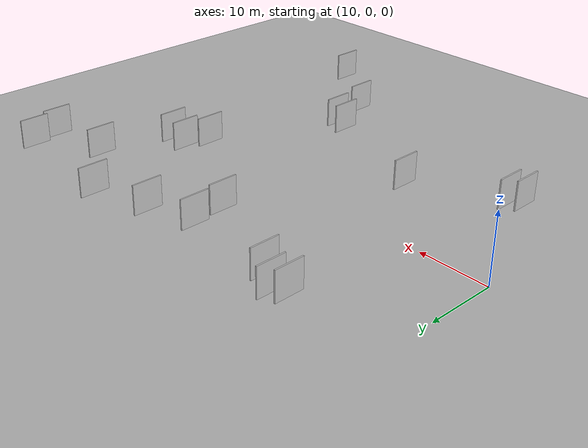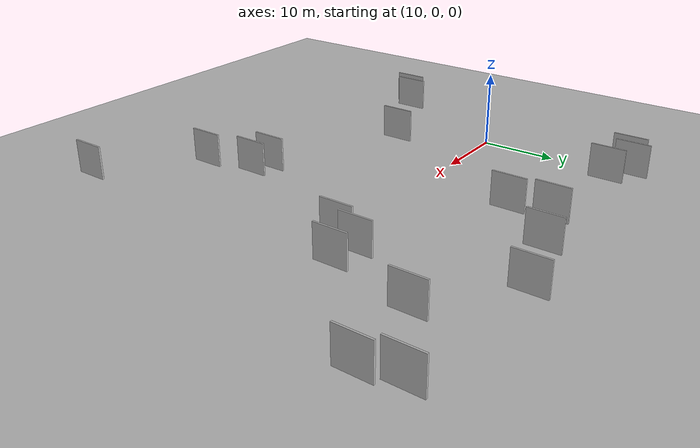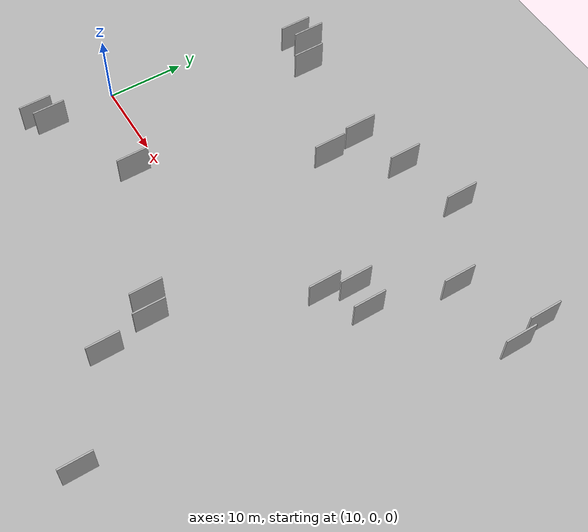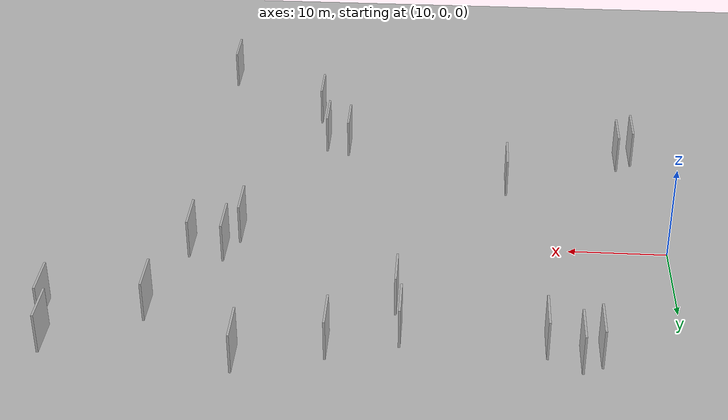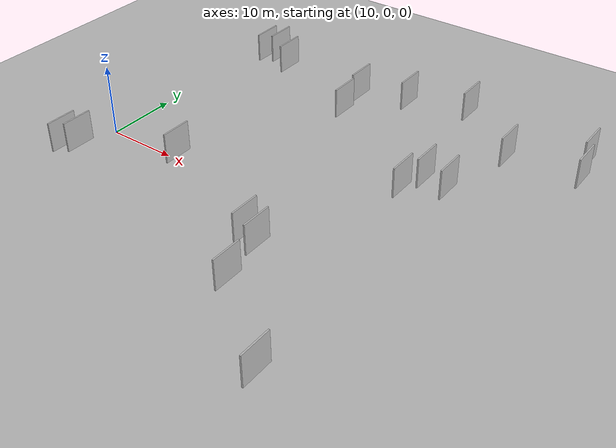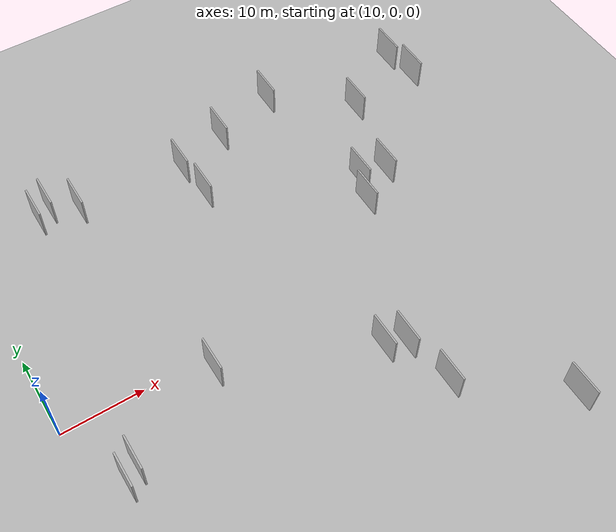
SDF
<?xml version="1.0" encoding="utf-8"?>

<sdf version="1.6">

   <world name="default">

      <gui fullscreen="0">

         <camera name="user_camera">

            <pose>-15 0 4.57585 0 0 0</pose>

            <view_controller>orbit</view_controller>

         </camera>

      </gui>

      <scene>

         <sky>

           <clouds>

             <speed>12</speed>

           </clouds>

         </sky>

         <ambient>0.4 0.4 0.4 1</ambient>

         <background>0.7 0.7 0.7 1</background>

         <shadows>1</shadows>

      </scene>

      <gravity>0 0 -9.8066</gravity>

      <magnetic_field>6e-06 2.3e-05 -4.2e-05</magnetic_field>

      <physics default="0" name="default_physics" type="ode">

         <ode>

            <solver>

               <type>quick</type>

               <iters>10</iters>

               <sor>1.0</sor>

               <use_dynamic_moi_rescaling>0</use_dynamic_moi_rescaling>

            </solver>

            <constraints>

               <cfm>0</cfm>

               <erp>0.2</erp>

               <contact_max_correcting_vel>100</contact_max_correcting_vel>

               <contact_surface_layer>0.001</contact_surface_layer>

            </constraints>

         </ode>

         <max_step_size>0.004</max_step_size>

         <real_time_factor>1</real_time_factor>

         <real_time_update_rate>250</real_time_update_rate>

      </physics>

      <light name="sun" type="directional">

         <cast_shadows>1</cast_shadows>

         <pose>0 0 10 0 0 0</pose>

         <diffuse>0.8 0.8 0.8 1</diffuse>

         <specular>0.2 0.2 0.2 1</specular>

         <attenuation>

            <range>1000</range>

            <constant>0.9</constant>

            <linear>0.01</linear>

            <quadratic>0.001</quadratic>

         </attenuation>

         <direction>-0.5 0.1 -0.9</direction>

      </light>

      <include>

         <name>ground_plane_1</name>

         <uri>model://HANNAS_ground_plane</uri>

         <pose>0 0 0  0 0 0</pose>

      </include>

      <include>

         <name>ground_plane_2</name>

         <uri>model://HANNAS_ground_plane</uri>

         <pose>100 0 0  0 0 0</pose>

      </include>

      <model name="HANNAS_wall_1">

         <static>1</static>

         <pose frame="">26.5306 -4.4248 5.0 0.000000 0.000000 1.570796</pose>

         <link name="link">

            <pose frame="">0 0 2.00 0 0 0</pose>

            <collision name="collision">

               <geometry>

                  <box>

                     <size>4.00 0.2 4.00</size>

                  </box>

               </geometry>

               <max_contacts>10</max_contacts>

               <surface>

                  <contact>

                     <ode/>

                  </contact>

                  <bounce/>

                  <friction>

                     <torsional>

                        <ode/>

                     </torsional>

                     <ode/>

                  </friction>

               </surface>

            </collision>

            <visual name="visual">

               <cast_shadows>0</cast_shadows>

               <geometry>

                  <box>

                     <size>4.00 0.2 4.00</size>

                  </box>

               </geometry>

               <material>

                  <script>

                     <uri>model://HANNAS_wall/materials/scripts</uri>

                     <uri>model://HANNAS_wall/materials/textures</uri>

                     <name>vrc/HANNAS_wall</name>

                  </script>

               </material>

            </visual>

            <self_collide>0</self_collide>

            <enable_wind>0</enable_wind>

            <kinematic>0</kinematic>

         </link>

      </model>

      <model name="HANNAS_wall_2">

         <static>1</static>

         <pose frame="">57.0450 -26.2859 5.0 0.000000 0.000000 1.570796</pose>

         <link name="link">

            <pose frame="">0 0 2.00 0 0 0</pose>

            <collision name="collision">

               <geometry>

                  <box>

                     <size>4.00 0.2 4.00</size>

                  </box>

               </geometry>

               <max_contacts>10</max_contacts>

               <surface>

                  <contact>

                     <ode/>

                  </contact>

                  <bounce/>

                  <friction>

                     <torsional>

                        <ode/>

                     </torsional>

                     <ode/>

                  </friction>

               </surface>

            </collision>

            <visual name="visual">

               <cast_shadows>0</cast_shadows>

               <geometry>

                  <box>

                     <size>4.00 0.2 4.00</size>

                  </box>

               </geometry>

               <material>

                  <script>

                     <uri>model://HANNAS_wall/materials/scripts</uri>

                     <uri>model://HANNAS_wall/materials/textures</uri>

                     <name>vrc/HANNAS_wall</name>

                  </script>

               </material>

            </visual>

            <self_collide>0</self_collide>

            <enable_wind>0</enable_wind>

            <kinematic>0</kinematic>

         </link>

      </model>

      <model name="HANNAS_wall_3">

         <static>1</static>

         <pose frame="">18.6197 22.8474 5.0 0.000000 0.000000 1.570796</pose>

         <link name="link">

            <pose frame="">0 0 2.00 0 0 0</pose>

            <collision name="collision">

               <geometry>

                  <box>

                     <size>4.00 0.2 4.00</size>

                  </box>

               </geometry>

               <max_contacts>10</max_contacts>

               <surface>

                  <contact>

                     <ode/>

                  </contact>

                  <bounce/>

                  <friction>

                     <torsional>

                        <ode/>

                     </torsional>

                     <ode/>

                  </friction>

               </surface>

            </collision>

            <visual name="visual">

               <cast_shadows>0</cast_shadows>

               <geometry>

                  <box>

                     <size>4.00 0.2 4.00</size>

                  </box>

               </geometry>

               <material>

                  <script>

                     <uri>model://HANNAS_wall/materials/scripts</uri>

                     <uri>model://HANNAS_wall/materials/textures</uri>

                     <name>vrc/HANNAS_wall</name>

                  </script>

               </material>

            </visual>

            <self_collide>0</self_collide>

            <enable_wind>0</enable_wind>

            <kinematic>0</kinematic>

         </link>

      </model>

      <model name="HANNAS_wall_4">

         <static>1</static>

         <pose frame="">59.3501 18.5660 5.0 0.000000 0.000000 1.570796</pose>

         <link name="link">

            <pose frame="">0 0 2.00 0 0 0</pose>

            <collision name="collision">

               <geometry>

                  <box>

                     <size>4.00 0.2 4.00</size>

                  </box>

               </geometry>

               <max_contacts>10</max_contacts>

               <surface>

                  <contact>

                     <ode/>

                  </contact>

                  <bounce/>

                  <friction>

                     <torsional>

                        <ode/>

                     </torsional>

                     <ode/>

                  </friction>

               </surface>

            </collision>

            <visual name="visual">

               <cast_shadows>0</cast_shadows>

               <geometry>

                  <box>

                     <size>4.00 0.2 4.00</size>

                  </box>

               </geometry>

               <material>

                  <script>

                     <uri>model://HANNAS_wall/materials/scripts</uri>

                     <uri>model://HANNAS_wall/materials/textures</uri>

                     <name>vrc/HANNAS_wall</name>

                  </script>

               </material>

            </visual>

            <self_collide>0</self_collide>

            <enable_wind>0</enable_wind>

            <kinematic>0</kinematic>

         </link>

      </model>

      <model name="HANNAS_wall_5">

         <static>1</static>

         <pose frame="">13.4207 -10.8887 5.0 0.000000 0.000000 1.570796</pose>

         <link name="link">

            <pose frame="">0 0 2.00 0 0 0</pose>

            <collision name="collision">

               <geometry>

                  <box>

                     <size>4.00 0.2 4.00</size>

                  </box>

               </geometry>

               <max_contacts>10</max_contacts>

               <surface>

                  <contact>

                     <ode/>

                  </contact>

                  <bounce/>

                  <friction>

                     <torsional>

                        <ode/>

                     </torsional>

                     <ode/>

                  </friction>

               </surface>

            </collision>

            <visual name="visual">

               <cast_shadows>0</cast_shadows>

               <geometry>

                  <box>

                     <size>4.00 0.2 4.00</size>

                  </box>

               </geometry>

               <material>

                  <script>

                     <uri>model://HANNAS_wall/materials/scripts</uri>

                     <uri>model://HANNAS_wall/materials/textures</uri>

                     <name>vrc/HANNAS_wall</name>

                  </script>

               </material>

            </visual>

            <self_collide>0</self_collide>

            <enable_wind>0</enable_wind>

            <kinematic>0</kinematic>

         </link>

      </model>

      <model name="HANNAS_wall_6">

         <static>1</static>

         <pose frame="">52.3927 5.6688 5.0 0.000000 0.000000 1.570796</pose>

         <link name="link">

            <pose frame="">0 0 2.00 0 0 0</pose>

            <collision name="collision">

               <geometry>

                  <box>

                     <size>4.00 0.2 4.00</size>

                  </box>

               </geometry>

               <max_contacts>10</max_contacts>

               <surface>

                  <contact>

                     <ode/>

                  </contact>

                  <bounce/>

                  <friction>

                     <torsional>

                        <ode/>

                     </torsional>

                     <ode/>

                  </friction>

               </surface>

            </collision>

            <visual name="visual">

               <cast_shadows>0</cast_shadows>

               <geometry>

                  <box>

                     <size>4.00 0.2 4.00</size>

                  </box>

               </geometry>

               <material>

                  <script>

                     <uri>model://HANNAS_wall/materials/scripts</uri>

                     <uri>model://HANNAS_wall/materials/textures</uri>

                     <name>vrc/HANNAS_wall</name>

                  </script>

               </material>

            </visual>

            <self_collide>0</self_collide>

            <enable_wind>0</enable_wind>

            <kinematic>0</kinematic>

         </link>

      </model>

      <model name="HANNAS_wall_7">

         <static>1</static>

         <pose frame="">42.6199 23.0611 5.0 0.000000 0.000000 1.570796</pose>

         <link name="link">

            <pose frame="">0 0 2.00 0 0 0</pose>

            <collision name="collision">

               <geometry>

                  <box>

                     <size>4.00 0.2 4.00</size>

                  </box>

               </geometry>

               <max_contacts>10</max_contacts>

               <surface>

                  <contact>

                     <ode/>

                  </contact>

                  <bounce/>

                  <friction>

                     <torsional>

                        <ode/>

                     </torsional>

                     <ode/>

                  </friction>

               </surface>

            </collision>

            <visual name="visual">

               <cast_shadows>0</cast_shadows>

               <geometry>

                  <box>

                     <size>4.00 0.2 4.00</size>

                  </box>

               </geometry>

               <material>

                  <script>

                     <uri>model://HANNAS_wall/materials/scripts</uri>

                     <uri>model://HANNAS_wall/materials/textures</uri>

                     <name>vrc/HANNAS_wall</name>

                  </script>

               </material>

            </visual>

            <self_collide>0</self_collide>

            <enable_wind>0</enable_wind>

            <kinematic>0</kinematic>

         </link>

      </model>

      <model name="HANNAS_wall_8">

         <static>1</static>

         <pose frame="">36.7980 16.3737 5.0 0.000000 0.000000 1.570796</pose>

         <link name="link">

            <pose frame="">0 0 2.00 0 0 0</pose>

            <collision name="collision">

               <geometry>

                  <box>

                     <size>4.00 0.2 4.00</size>

                  </box>

               </geometry>

               <max_contacts>10</max_contacts>

               <surface>

                  <contact>

                     <ode/>

                  </contact>

                  <bounce/>

                  <friction>

                     <torsional>

                        <ode/>

                     </torsional>

                     <ode/>

                  </friction>

               </surface>

            </collision>

            <visual name="visual">

               <cast_shadows>0</cast_shadows>

               <geometry>

                  <box>

                     <size>4.00 0.2 4.00</size>

                  </box>

               </geometry>

               <material>

                  <script>

                     <uri>model://HANNAS_wall/materials/scripts</uri>

                     <uri>model://HANNAS_wall/materials/textures</uri>

                     <name>vrc/HANNAS_wall</name>

                  </script>

               </material>

            </visual>

            <self_collide>0</self_collide>

            <enable_wind>0</enable_wind>

            <kinematic>0</kinematic>

         </link>

      </model>

      <model name="HANNAS_wall_9">

         <static>1</static>

         <pose frame="">56.9147 8.4570 5.0 0.000000 0.000000 1.570796</pose>

         <link name="link">

            <pose frame="">0 0 2.00 0 0 0</pose>

            <collision name="collision">

               <geometry>

                  <box>

                     <size>4.00 0.2 4.00</size>

                  </box>

               </geometry>

               <max_contacts>10</max_contacts>

               <surface>

                  <contact>

                     <ode/>

                  </contact>

                  <bounce/>

                  <friction>

                     <torsional>

                        <ode/>

                     </torsional>

                     <ode/>

                  </friction>

               </surface>

            </collision>

            <visual name="visual">

               <cast_shadows>0</cast_shadows>

               <geometry>

                  <box>

                     <size>4.00 0.2 4.00</size>

                  </box>

               </geometry>

               <material>

                  <script>

                     <uri>model://HANNAS_wall/materials/scripts</uri>

                     <uri>model://HANNAS_wall/materials/textures</uri>

                     <name>vrc/HANNAS_wall</name>

                  </script>

               </material>

            </visual>

            <self_collide>0</self_collide>

            <enable_wind>0</enable_wind>

            <kinematic>0</kinematic>

         </link>

      </model>

      <model name="HANNAS_wall_10">

         <static>1</static>

         <pose frame="">43.1356 -11.3131 5.0 0.000000 0.000000 1.570796</pose>

         <link name="link">

            <pose frame="">0 0 2.00 0 0 0</pose>

            <collision name="collision">

               <geometry>

                  <box>

                     <size>4.00 0.2 4.00</size>

                  </box>

               </geometry>

               <max_contacts>10</max_contacts>

               <surface>

                  <contact>

                     <ode/>

                  </contact>

                  <bounce/>

                  <friction>

                     <torsional>

                        <ode/>

                     </torsional>

                     <ode/>

                  </friction>

               </surface>

            </collision>

            <visual name="visual">

               <cast_shadows>0</cast_shadows>

               <geometry>

                  <box>

                     <size>4.00 0.2 4.00</size>

                  </box>

               </geometry>

               <material>

                  <script>

                     <uri>model://HANNAS_wall/materials/scripts</uri>

                     <uri>model://HANNAS_wall/materials/textures</uri>

                     <name>vrc/HANNAS_wall</name>

                  </script>

               </material>

            </visual>

            <self_collide>0</self_collide>

            <enable_wind>0</enable_wind>

            <kinematic>0</kinematic>

         </link>

      </model>

      <model name="HANNAS_wall_11">

         <static>1</static>

         <pose frame="">67.7056 23.6533 5.0 0.000000 0.000000 1.570796</pose>

         <link name="link">

            <pose frame="">0 0 2.00 0 0 0</pose>

            <collision name="collision">

               <geometry>

                  <box>

                     <size>4.00 0.2 4.00</size>

                  </box>

               </geometry>

               <max_contacts>10</max_contacts>

               <surface>

                  <contact>

                     <ode/>

                  </contact>

                  <bounce/>

                  <friction>

                     <torsional>

                        <ode/>

                     </torsional>

                     <ode/>

                  </friction>

               </surface>

            </collision>

            <visual name="visual">

               <cast_shadows>0</cast_shadows>

               <geometry>

                  <box>

                     <size>4.00 0.2 4.00</size>

                  </box>

               </geometry>

               <material>

                  <script>

                     <uri>model://HANNAS_wall/materials/scripts</uri>

                     <uri>model://HANNAS_wall/materials/textures</uri>

                     <name>vrc/HANNAS_wall</name>

                  </script>

               </material>

            </visual>

            <self_collide>0</self_collide>

            <enable_wind>0</enable_wind>

            <kinematic>0</kinematic>

         </link>

      </model>

      <model name="HANNAS_wall_12">

         <static>1</static>

         <pose frame="">46.5691 -18.1531 5.0 0.000000 0.000000 1.570796</pose>

         <link name="link">

            <pose frame="">0 0 2.00 0 0 0</pose>

            <collision name="collision">

               <geometry>

                  <box>

                     <size>4.00 0.2 4.00</size>

                  </box>

               </geometry>

               <max_contacts>10</max_contacts>

               <surface>

                  <contact>

                     <ode/>

                  </contact>

                  <bounce/>

                  <friction>

                     <torsional>

                        <ode/>

                     </torsional>

                     <ode/>

                  </friction>

               </surface>

            </collision>

            <visual name="visual">

               <cast_shadows>0</cast_shadows>

               <geometry>

                  <box>

                     <size>4.00 0.2 4.00</size>

                  </box>

               </geometry>

               <material>

                  <script>

                     <uri>model://HANNAS_wall/materials/scripts</uri>

                     <uri>model://HANNAS_wall/materials/textures</uri>

                     <name>vrc/HANNAS_wall</name>

                  </script>

               </material>

            </visual>

            <self_collide>0</self_collide>

            <enable_wind>0</enable_wind>

            <kinematic>0</kinematic>

         </link>

      </model>

      <model name="HANNAS_wall_13">

         <static>1</static>

         <pose frame="">14.9827 -9.7836 5.0 0.000000 0.000000 1.570796</pose>

         <link name="link">

            <pose frame="">0 0 2.00 0 0 0</pose>

            <collision name="collision">

               <geometry>

                  <box>

                     <size>4.00 0.2 4.00</size>

                  </box>

               </geometry>

               <max_contacts>10</max_contacts>

               <surface>

                  <contact>

                     <ode/>

                  </contact>

                  <bounce/>

                  <friction>

                     <torsional>

                        <ode/>

                     </torsional>

                     <ode/>

                  </friction>

               </surface>

            </collision>

            <visual name="visual">

               <cast_shadows>0</cast_shadows>

               <geometry>

                  <box>

                     <size>4.00 0.2 4.00</size>

                  </box>

               </geometry>

               <material>

                  <script>

                     <uri>model://HANNAS_wall/materials/scripts</uri>

                     <uri>model://HANNAS_wall/materials/textures</uri>

                     <name>vrc/HANNAS_wall</name>

                  </script>

               </material>

            </visual>

            <self_collide>0</self_collide>

            <enable_wind>0</enable_wind>

            <kinematic>0</kinematic>

         </link>

      </model>

      <model name="HANNAS_wall_14">

         <static>1</static>

         <pose frame="">45.4475 -12.1264 5.0 0.000000 0.000000 1.570796</pose>

         <link name="link">

            <pose frame="">0 0 2.00 0 0 0</pose>

            <collision name="collision">

               <geometry>

                  <box>

                     <size>4.00 0.2 4.00</size>

                  </box>

               </geometry>

               <max_contacts>10</max_contacts>

               <surface>

                  <contact>

                     <ode/>

                  </contact>

                  <bounce/>

                  <friction>

                     <torsional>

                        <ode/>

                     </torsional>

                     <ode/>

                  </friction>

               </surface>

            </collision>

            <visual name="visual">

               <cast_shadows>0</cast_shadows>

               <geometry>

                  <box>

                     <size>4.00 0.2 4.00</size>

                  </box>

               </geometry>

               <material>

                  <script>

                     <uri>model://HANNAS_wall/materials/scripts</uri>

                     <uri>model://HANNAS_wall/materials/textures</uri>

                     <name>vrc/HANNAS_wall</name>

                  </script>

               </material>

            </visual>

            <self_collide>0</self_collide>

            <enable_wind>0</enable_wind>

            <kinematic>0</kinematic>

         </link>

      </model>

      <model name="HANNAS_wall_15">

         <static>1</static>

         <pose frame="">23.3274 21.9148 5.0 0.000000 0.000000 1.570796</pose>

         <link name="link">

            <pose frame="">0 0 2.00 0 0 0</pose>

            <collision name="collision">

               <geometry>

                  <box>

                     <size>4.00 0.2 4.00</size>

                  </box>

               </geometry>

               <max_contacts>10</max_contacts>

               <surface>

                  <contact>

                     <ode/>

                  </contact>

                  <bounce/>

                  <friction>

                     <torsional>

                        <ode/>

                     </torsional>

                     <ode/>

                  </friction>

               </surface>

            </collision>

            <visual name="visual">

               <cast_shadows>0</cast_shadows>

               <geometry>

                  <box>

                     <size>4.00 0.2 4.00</size>

                  </box>

               </geometry>

               <material>

                  <script>

                     <uri>model://HANNAS_wall/materials/scripts</uri>

                     <uri>model://HANNAS_wall/materials/textures</uri>

                     <name>vrc/HANNAS_wall</name>

                  </script>

               </material>

            </visual>

            <self_collide>0</self_collide>

            <enable_wind>0</enable_wind>

            <kinematic>0</kinematic>

         </link>

      </model>

      <model name="HANNAS_wall_16">

         <static>1</static>

         <pose frame="">68.5829 19.7129 5.0 0.000000 0.000000 1.570796</pose>

         <link name="link">

            <pose frame="">0 0 2.00 0 0 0</pose>

            <collision name="collision">

               <geometry>

                  <box>

                     <size>4.00 0.2 4.00</size>

                  </box>

               </geometry>

               <max_contacts>10</max_contacts>

               <surface>

                  <contact>

                     <ode/>

                  </contact>

                  <bounce/>

                  <friction>

                     <torsional>

                        <ode/>

                     </torsional>

                     <ode/>

                  </friction>

               </surface>

            </collision>

            <visual name="visual">

               <cast_shadows>0</cast_shadows>

               <geometry>

                  <box>

                     <size>4.00 0.2 4.00</size>

                  </box>

               </geometry>

               <material>

                  <script>

                     <uri>model://HANNAS_wall/materials/scripts</uri>

                     <uri>model://HANNAS_wall/materials/textures</uri>

                     <name>vrc/HANNAS_wall</name>

                  </script>

               </material>

            </visual>

            <self_collide>0</self_collide>

            <enable_wind>0</enable_wind>

            <kinematic>0</kinematic>

         </link>

      </model>

      <model name="HANNAS_wall_17">

         <static>1</static>

         <pose frame="">36.2360 21.0264 5.0 0.000000 0.000000 1.570796</pose>

         <link name="link">

            <pose frame="">0 0 2.00 0 0 0</pose>

            <collision name="collision">

               <geometry>

                  <box>

                     <size>4.00 0.2 4.00</size>

                  </box>

               </geometry>

               <max_contacts>10</max_contacts>

               <surface>

                  <contact>

                     <ode/>

                  </contact>

                  <bounce/>

                  <friction>

                     <torsional>

                        <ode/>

                     </torsional>

                     <ode/>

                  </friction>

               </surface>

            </collision>

            <visual name="visual">

               <cast_shadows>0</cast_shadows>

               <geometry>

                  <box>

                     <size>4.00 0.2 4.00</size>

                  </box>

               </geometry>

               <material>

                  <script>

                     <uri>model://HANNAS_wall/materials/scripts</uri>

                     <uri>model://HANNAS_wall/materials/textures</uri>

                     <name>vrc/HANNAS_wall</name>

                  </script>

               </material>

            </visual>

            <self_collide>0</self_collide>

            <enable_wind>0</enable_wind>

            <kinematic>0</kinematic>

         </link>

      </model>

      <model name="HANNAS_wall_18">

         <static>1</static>

         <pose frame="">50.5441 25.3861 5.0 0.000000 0.000000 1.570796</pose>

         <link name="link">

            <pose frame="">0 0 2.00 0 0 0</pose>

            <collision name="collision">

               <geometry>

                  <box>

                     <size>4.00 0.2 4.00</size>

                  </box>

               </geometry>

               <max_contacts>10</max_contacts>

               <surface>

                  <contact>

                     <ode/>

                  </contact>

                  <bounce/>

                  <friction>

                     <torsional>

                        <ode/>

                     </torsional>

                     <ode/>

                  </friction>

               </surface>

            </collision>

            <visual name="visual">

               <cast_shadows>0</cast_shadows>

               <geometry>

                  <box>

                     <size>4.00 0.2 4.00</size>

                  </box>

               </geometry>

               <material>

                  <script>

                     <uri>model://HANNAS_wall/materials/scripts</uri>

                     <uri>model://HANNAS_wall/materials/textures</uri>

                     <name>vrc/HANNAS_wall</name>

                  </script>

               </material>

            </visual>

            <self_collide>0</self_collide>

            <enable_wind>0</enable_wind>

            <kinematic>0</kinematic>

         </link>

      </model>

      <model name="HANNAS_wall_19">

         <static>1</static>

         <pose frame="">20.3528 23.7322 5.0 0.000000 0.000000 1.570796</pose>

         <link name="link">

            <pose frame="">0 0 2.00 0 0 0</pose>

            <collision name="collision">

               <geometry>

                  <box>

                     <size>4.00 0.2 4.00</size>

                  </box>

               </geometry>

               <max_contacts>10</max_contacts>

               <surface>

                  <contact>

                     <ode/>

                  </contact>

                  <bounce/>

                  <friction>

                     <torsional>

                        <ode/>

                     </torsional>

                     <ode/>

                  </friction>

               </surface>

            </collision>

            <visual name="visual">

               <cast_shadows>0</cast_shadows>

               <geometry>

                  <box>

                     <size>4.00 0.2 4.00</size>

                  </box>

               </geometry>

               <material>

                  <script>

                     <uri>model://HANNAS_wall/materials/scripts</uri>

                     <uri>model://HANNAS_wall/materials/textures</uri>

                     <name>vrc/HANNAS_wall</name>

                  </script>

               </material>

            </visual>

            <self_collide>0</self_collide>

            <enable_wind>0</enable_wind>

            <kinematic>0</kinematic>

         </link>

      </model>

      <model name="HANNAS_wall_20">

         <static>1</static>

         <pose frame="">53.6226 8.9058 5.0 0.000000 0.000000 1.570796</pose>

         <link name="link">

            <pose frame="">0 0 2.00 0 0 0</pose>

            <collision name="collision">

               <geometry>

                  <box>

                     <size>4.00 0.2 4.00</size>

                  </box>

               </geometry>

               <max_contacts>10</max_contacts>

               <surface>

                  <contact>

                     <ode/>

                  </contact>

                  <bounce/>

                  <friction>

                     <torsional>

                        <ode/>

                     </torsional>

                     <ode/>

                  </friction>

               </surface>

            </collision>

            <visual name="visual">

               <cast_shadows>0</cast_shadows>

               <geometry>

                  <box>

                     <size>4.00 0.2 4.00</size>

                  </box>

               </geometry>

               <material>

                  <script>

                     <uri>model://HANNAS_wall/materials/scripts</uri>

                     <uri>model://HANNAS_wall/materials/textures</uri>

                     <name>vrc/HANNAS_wall</name>

                  </script>

               </material>

            </visual>

            <self_collide>0</self_collide>

            <enable_wind>0</enable_wind>

            <kinematic>0</kinematic>

         </link>

      </model>

   </world>

</sdf>

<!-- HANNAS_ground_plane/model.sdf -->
<sdf version="1.4">
<model name="HANNAS_ground_plane">
  <static>true</static>
    <link name="link">
      <collision name="collision">
        <geometry>
          <plane>
            <normal>0 0 1</normal>
            <size>1000 1000</size>
          </plane>
        </geometry>
        <surface>
          <friction>
            <ode>
              <mu>100</mu>
              <mu2>50</mu2>
            </ode>
          </friction>
        </surface>
      </collision>
      <visual name="visual">
        <cast_shadows>false</cast_shadows>
        <geometry>
          <plane>
            <normal>0 0 1</normal>
            <size>1000 1000</size>
          </plane>
        </geometry>
        <material>
          <script>
            <uri>model://HANNAS_ground_plane/materials/scripts/HANNAS_ground_plane.material</uri>
	    <uri>model://HANNAS_ground_plane/materials/textures</uri>
            <name>HANNASGroundPlane/Image</name>
          </script>
        </material>
      </visual>
    </link>
  </model>
</sdf>
